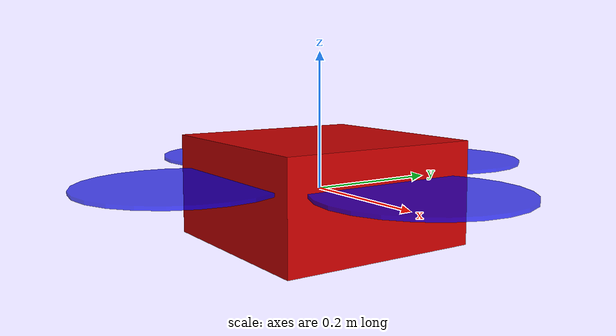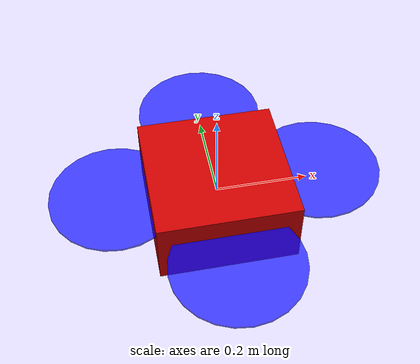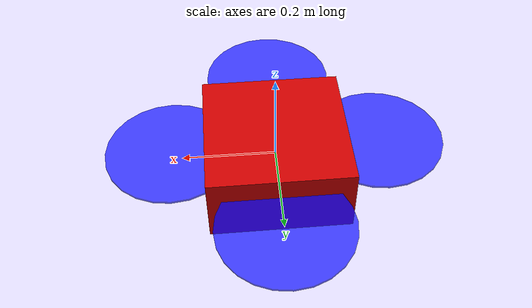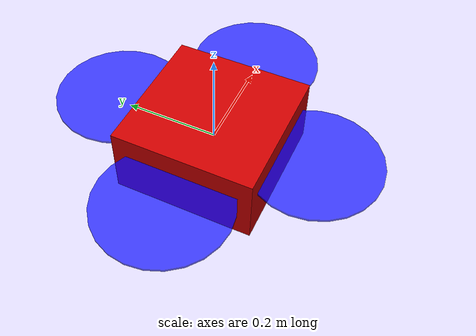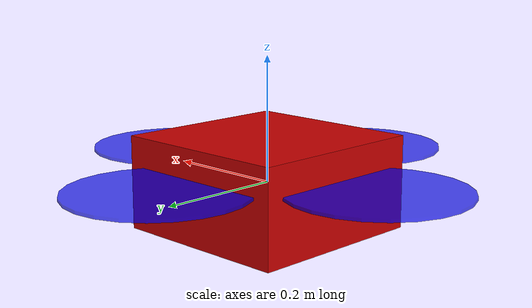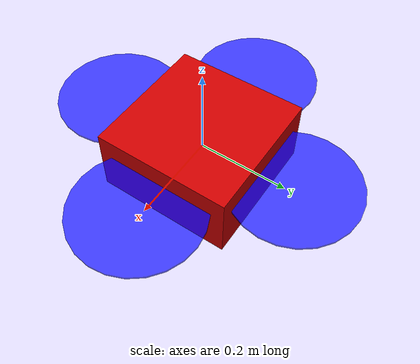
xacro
<?xml version="1.0"?>
<robot name="quadrotor" xmlns:xacro="http://ros.org/wiki/xacro">

  <!-- Properties for 250-450mm quadcopter -->
  <xacro:property name="namespace" value="drone" />
  <xacro:property name="mass" value="1.50" /> <!-- [kg] -->
  <xacro:property name="body_width" value="0.3" />
  <xacro:property name="body_height" value="0.15" />
  <xacro:property name="mass_rotor" value="0.005" /> <!-- [kg] -->
  <xacro:property name="arm_length" value="0.22" />
  <xacro:property name="rotor_offset_top" value="0.025" />
  <xacro:property name="radius_rotor" value="0.14" />

  <!-- Motor constants for 2300KV brushless motors -->
  <xacro:property name="motor_constant" value="2.95e-05" />
  <xacro:property name="moment_constant" value="0.016" />
  <xacro:property name="time_constant_up" value="0.0125" />
  <xacro:property name="time_constant_down" value="0.025" />
  <xacro:property name="max_rot_velocity" value="1100" /> <!-- [rad/s] -->
  <xacro:property name="rotor_drag_coefficient" value="8.06428e-05" />
  <xacro:property name="rolling_moment_coefficient" value="1e-06" />

  <!-- Body inertia properties - Fixed for Gazebo Harmonic -->
  <xacro:property name="body_inertia">
    <inertia ixx="0.0347" ixy="0.0" ixz="0.0"
             iyy="0.0395" iyz="0.0"
             izz="0.0614" />
  </xacro:property>

  <!-- Base link -->
  <link name="base_link">
    <inertial>
      <mass value="${mass}" />
      <origin xyz="0 0 0" rpy="0 0 0" />
      <xacro:insert_block name="body_inertia" />
    </inertial>

    <visual>
      <origin xyz="0 0 0" rpy="0 0 0" />
      <geometry>
        <box size="${body_width} ${body_width} ${body_height}"/>
      </geometry>
      <material name="red">
        <color rgba="0.8 0 0 1"/>
      </material>
    </visual>

    <collision>
      <origin xyz="0 0 0" rpy="0 0 0" />
      <geometry>
        <box size="${body_width} ${body_width} ${body_height}"/>
      </geometry>
    </collision>
  </link>

  <!-- Motor/Rotor macro -->
  <xacro:macro name="vertical_rotor" params="motor_number x_pos y_pos direction color">

    <link name="rotor_${motor_number}">
      <inertial>
        <mass value="${mass_rotor}" />
        <origin xyz="0 0 0" rpy="0 0 0" />
        <inertia ixx="9.75e-07" ixy="0.0" ixz="0.0"
                 iyy="0.000166704" iyz="0.0"
                 izz="0.000167604" />
      </inertial>

      <visual>
        <geometry>
          <cylinder length="0.005" radius="${radius_rotor}"/>
        </geometry>
        <material name="${color}">
          <color rgba="0 0 1 0.7"/>
        </material>
      </visual>

      <collision>
        <geometry>
          <cylinder length="0.005" radius="${radius_rotor}"/>
        </geometry>
      </collision>
    </link>

    <joint name="rotor_${motor_number}_joint" type="continuous">
      <origin xyz="${x_pos} ${y_pos} ${rotor_offset_top}" rpy="0 0 0" />
      <axis xyz="0 0 1" />
      <parent link="base_link" />
      <child link="rotor_${motor_number}" />
    </joint>

    <!-- Motor plugin - Modern Gazebo Harmonic approach -->
    <gazebo reference="rotor_${motor_number}">
      <sensor name="motor_${motor_number}_force_torque" type="force_torque">
        <always_on>true</always_on>
        <update_rate>1000</update_rate>
        <force_torque>
          <frame>child</frame>
          <measure_direction>child_to_parent</measure_direction>
        </force_torque>
      </sensor>
    </gazebo>
  </xacro:macro>

  <!-- Create 4 rotors in X configuration -->
  <xacro:vertical_rotor motor_number="0" x_pos="${arm_length}" y_pos="0" direction="ccw" color="blue"/>
  <xacro:vertical_rotor motor_number="1" x_pos="0" y_pos="-${arm_length}" direction="cw" color="green"/>
  <xacro:vertical_rotor motor_number="2" x_pos="-${arm_length}" y_pos="0" direction="ccw" color="blue"/>
  <xacro:vertical_rotor motor_number="3" x_pos="0" y_pos="${arm_length}" direction="cw" color="green"/>

  <!-- IMU Sensor -->
  <link name="imu_link">
    <inertial>
      <mass value="0.015" />
      <origin xyz="0 0 0" rpy="0 0 0" />
      <inertia ixx="0.00001" ixy="0.0" ixz="0.0"
               iyy="0.00001" iyz="0.0"
               izz="0.00001" />
    </inertial>
    <visual>
      <geometry>
        <box size="0.01 0.01 0.005"/>
      </geometry>
    </visual>
  </link>

  <joint name="imu_joint" type="fixed">
    <parent link="base_link"/>
    <child link="imu_link"/>
    <origin xyz="0 0 0.02" rpy="0 0 0"/>
  </joint>

  <!-- IMU Gazebo Plugin -->
  <gazebo reference="imu_link">
    <sensor name="imu_sensor" type="imu">
      <always_on>true</always_on>
      <update_rate>250</update_rate>
      <visualize>true</visualize>
      <imu>
        <angular_velocity>
          <x>
            <noise type="gaussian">
              <mean>0.0</mean>
              <stddev>2e-4</stddev>
            </noise>
          </x>
          <y>
            <noise type="gaussian">
              <mean>0.0</mean>
              <stddev>2e-4</stddev>
            </noise>
          </y>
          <z>
            <noise type="gaussian">
              <mean>0.0</mean>
              <stddev>2e-4</stddev>
            </noise>
          </z>
        </angular_velocity>
        <linear_acceleration>
          <x>
            <noise type="gaussian">
              <mean>0.0</mean>
              <stddev>1.7e-2</stddev>
            </noise>
          </x>
          <y>
            <noise type="gaussian">
              <mean>0.0</mean>
              <stddev>1.7e-2</stddev>
            </noise>
          </y>
          <z>
            <noise type="gaussian">
              <mean>0.0</mean>
              <stddev>1.7e-2</stddev>
            </noise>
          </z>
        </linear_acceleration>
      </imu>
      <plugin filename="gz-sim-imu-system" name="gz::sim::systems::Imu">
        <initial_orientation_as_reference>false</initial_orientation_as_reference>
      </plugin>
    </sensor>
  </gazebo>

  <!-- Pose Publisher -->
    <!-- Pose Publisher Plugin for state estimation -->
  <gazebo>
    <plugin filename="gz-sim-pose-publisher-system" name="gz::sim::systems::PosePublisher">
      <publish_link_pose>true</publish_link_pose>
      <use_pose_vector_msg>true</use_pose_vector_msg>
      <static_publisher>true</static_publisher>
      <static_update_frequency>250</static_update_frequency>
    </plugin>
  </gazebo>

  <!-- Motor Controllers - Essential for Gazebo Harmonic -->
  <gazebo reference="rotor_0">
    <plugin filename="gz-sim-multicopter-motor-model-system" name="gz::sim::systems::MulticopterMotorModel">
      <robotNamespace></robotNamespace>
      <jointName>rotor_0_joint</jointName>
      <linkName>rotor_0</linkName>
      <turningDirection>ccw</turningDirection>
      <timeConstantUp>0.0125</timeConstantUp>
      <timeConstantDown>0.025</timeConstantDown>
      <maxRotVelocity>1000</maxRotVelocity>
      <motorConstant>8.54858e-06</motorConstant>
      <momentConstant>0.016</momentConstant>
      <commandSubTopic>motor_speed_0</commandSubTopic>
      <motorNumber>0</motorNumber>
      <rotorDragCoefficient>8.06428e-05</rotorDragCoefficient>
      <rollingMomentCoefficient>1e-06</rollingMomentCoefficient>
      <motorSpeedPubTopic>motor_speed_0</motorSpeedPubTopic>
      <rotorVelocitySlowdownSim>10</rotorVelocitySlowdownSim>
    </plugin>
  </gazebo>

  <gazebo reference="rotor_1">
    <plugin filename="gz-sim-multicopter-motor-model-system" name="gz::sim::systems::MulticopterMotorModel">
      <robotNamespace></robotNamespace>
      <jointName>rotor_1_joint</jointName>
      <linkName>rotor_1</linkName>
      <turningDirection>cw</turningDirection>
      <timeConstantUp>0.0125</timeConstantUp>
      <timeConstantDown>0.025</timeConstantDown>
      <maxRotVelocity>1000</maxRotVelocity>
      <motorConstant>8.54858e-06</motorConstant>
      <momentConstant>0.016</momentConstant>
      <commandSubTopic>motor_speed_1</commandSubTopic>
      <motorNumber>1</motorNumber>
      <rotorDragCoefficient>8.06428e-05</rotorDragCoefficient>
      <rollingMomentCoefficient>1e-06</rollingMomentCoefficient>
      <motorSpeedPubTopic>motor_speed_1</motorSpeedPubTopic>
      <rotorVelocitySlowdownSim>10</rotorVelocitySlowdownSim>
    </plugin>
  </gazebo>

  <gazebo reference="rotor_2">
    <plugin filename="gz-sim-multicopter-motor-model-system" name="gz::sim::systems::MulticopterMotorModel">
      <robotNamespace></robotNamespace>
      <jointName>rotor_2_joint</jointName>
      <linkName>rotor_2</linkName>
      <turningDirection>ccw</turningDirection>
      <timeConstantUp>0.0125</timeConstantUp>
      <timeConstantDown>0.025</timeConstantDown>
      <maxRotVelocity>1000</maxRotVelocity>
      <motorConstant>8.54858e-06</motorConstant>
      <momentConstant>0.016</momentConstant>
      <commandSubTopic>motor_speed_2</commandSubTopic>
      <motorNumber>2</motorNumber>
      <rotorDragCoefficient>8.06428e-05</rotorDragCoefficient>
      <rollingMomentCoefficient>1e-06</rollingMomentCoefficient>
      <motorSpeedPubTopic>motor_speed_2</motorSpeedPubTopic>
      <rotorVelocitySlowdownSim>10</rotorVelocitySlowdownSim>
    </plugin>
  </gazebo>

  <gazebo reference="rotor_3">
    <plugin filename="gz-sim-multicopter-motor-model-system" name="gz::sim::systems::MulticopterMotorModel">
      <robotNamespace></robotNamespace>
      <jointName>rotor_3_joint</jointName>
      <linkName>rotor_3</linkName>
      <turningDirection>cw</turningDirection>
      <timeConstantUp>0.0125</timeConstantUp>
      <timeConstantDown>0.025</timeConstantDown>
      <maxRotVelocity>1000</maxRotVelocity>
      <motorConstant>8.54858e-06</motorConstant>
      <momentConstant>0.016</momentConstant>
      <commandSubTopic>motor_speed_3</commandSubTopic>
      <motorNumber>3</motorNumber>
      <rotorDragCoefficient>8.06428e-05</rotorDragCoefficient>
      <rollingMomentCoefficient>1e-06</rollingMomentCoefficient>
      <motorSpeedPubTopic>motor_speed_3</motorSpeedPubTopic>
      <rotorVelocitySlowdownSim>10</rotorVelocitySlowdownSim>
    </plugin>
  </gazebo>

  <!-- Camera Sensor -->
  <link name="camera_link">
    <inertial>
      <mass value="0.02" />
      <origin xyz="0 0 0" />
      <inertia ixx="0.00001" ixy="0.0" ixz="0.0"
               iyy="0.00001" iyz="0.0"
               izz="0.00001" />
    </inertial>
    <visual>
      <geometry>
        <box size="0.02 0.05 0.02"/>
      </geometry>
      <material name="black"/>
    </visual>
  </link>

  <joint name="camera_joint" type="fixed">
    <parent link="base_link"/>
    <child link="camera_link"/>
    <origin xyz="0.12 0 -0.05" rpy="0 0.3 0"/>
  </joint>

  <!-- Camera Gazebo Plugin -->
  <gazebo reference="camera_link">
    <sensor type="camera" name="camera">
      <update_rate>30.0</update_rate>
      <camera name="head">
        <horizontal_fov>1.3962634</horizontal_fov>
        <image>
          <width>800</width>
          <height>600</height>
          <format>R8G8B8</format>
        </image>
        <clip>
          <near>0.02</near>
          <far>300</far>
        </clip>
      </camera>
      <plugin name="camera_controller" filename="gz-sim-camera-system">
        <ros>
          <namespace>/drone</namespace>
          <remapping>~/image_raw:=camera/image_raw</remapping>
          <remapping>~/camera_info:=camera/camera_info</remapping>
        </ros>
        <frame_name>camera_link</frame_name>
      </plugin>
    </sensor>
  </gazebo>

  <!-- ros2_control integration -->
  <ros2_control name="DroneSystem" type="system">
    <hardware>
      <plugin>gazebo_ros2_control/GazeboSystem</plugin>
    </hardware>

    <joint name="rotor_0_joint">
      <command_interface name="velocity">
        <param name="min">0</param>
        <param name="max">1100</param>
      </command_interface>
      <state_interface name="velocity"/>
    </joint>

    <joint name="rotor_1_joint">
      <command_interface name="velocity">
        <param name="min">0</param>
        <param name="max">1100</param>
      </command_interface>
      <state_interface name="velocity"/>
    </joint>

    <joint name="rotor_2_joint">
      <command_interface name="velocity">
        <param name="min">0</param>
        <param name="max">1100</param>
      </command_interface>
      <state_interface name="velocity"/>
    </joint>

    <joint name="rotor_3_joint">
      <command_interface name="velocity">
        <param name="min">0</param>
        <param name="max">1100</param>
      </command_interface>
      <state_interface name="velocity"/>
    </joint>
  </ros2_control>

  <gazebo>
    <plugin filename="gz_ros2_control-system" name="gz_ros2_control::GzROS2ControlPlugin">
      <parameters>$(find quadcopter_simulation)/config/drone_controllers.yaml</parameters>
    </plugin>
  </gazebo>

  <!-- Motor Speed Controller Plugin -->
  <gazebo>
    <plugin name="motor_speed_controller" filename="gz-sim-joint-position-controller-system">
      <ros>
        <namespace>/drone</namespace>
        <remapping>~/cmd:=motor_commands</remapping>
      </ros>
      <joint_name>rotor_0_joint</joint_name>
      <joint_name>rotor_1_joint</joint_name>
      <joint_name>rotor_2_joint</joint_name>
      <joint_name>rotor_3_joint</joint_name>
      <use_velocity_commands>true</use_velocity_commands>
    </plugin>
  </gazebo>

</robot>
